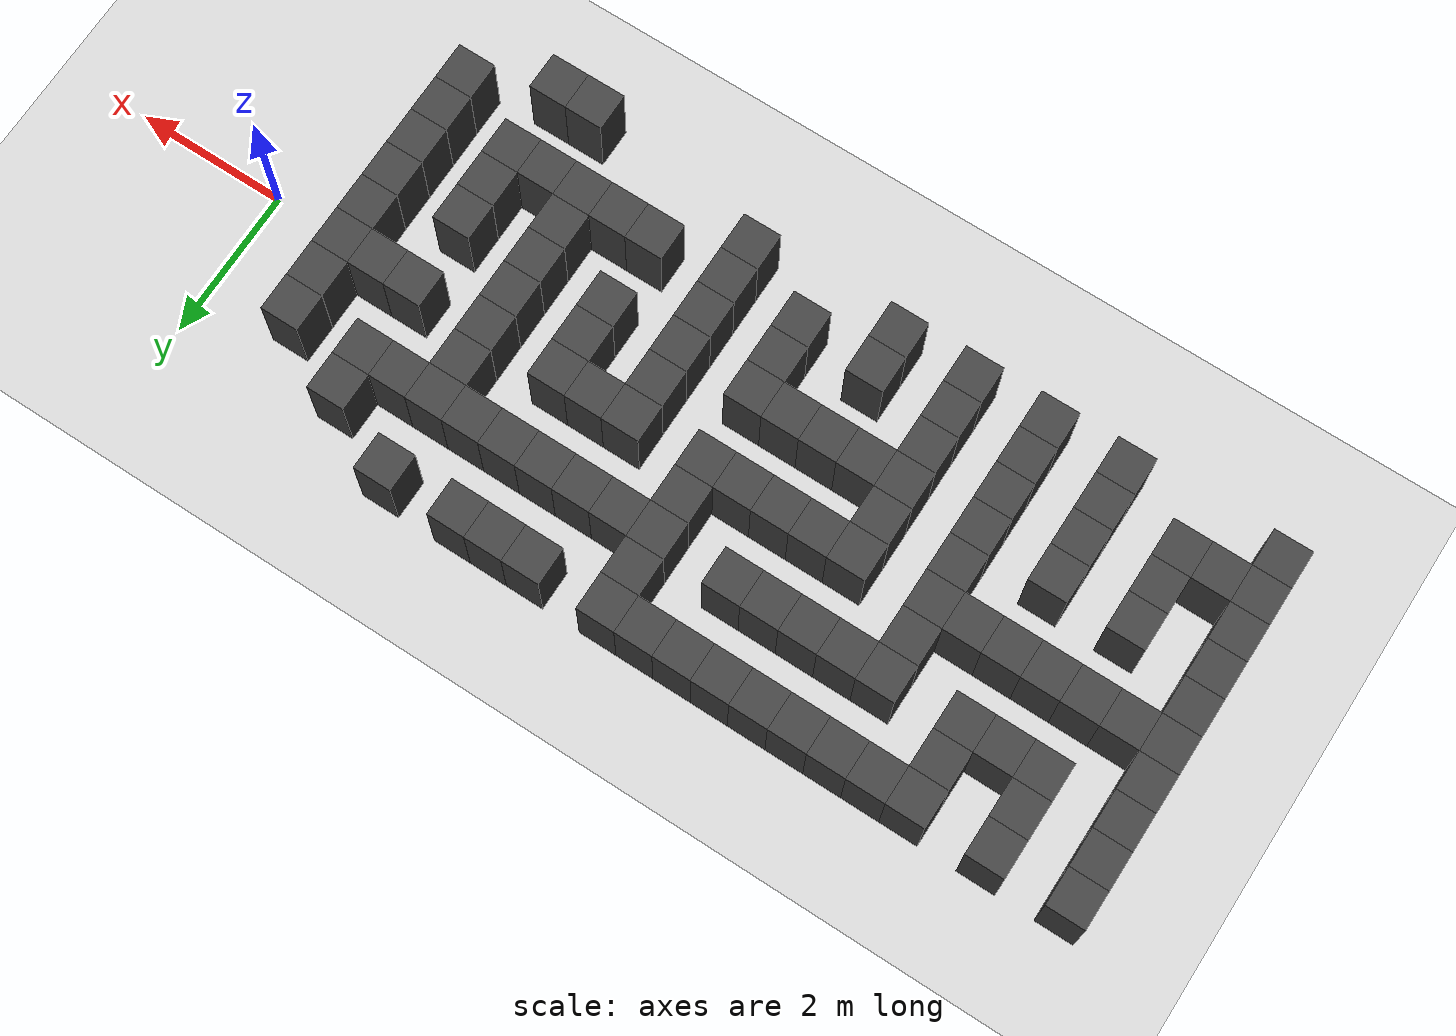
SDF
<sdf version="1.7">
 <world name="map_18596">
  <model name="ground_plane">
   <static>true</static>
   <link name="link">
    <collision name="collision">
     <geometry><plane><normal>0 0 1</normal><size>200 200</size></plane></geometry>
    </collision>
    <visual name="visual">
     <geometry><plane><normal>0 0 1</normal><size>200 200</size></plane></geometry>
     <material><ambient>0.8 0.8 0.8 1</ambient><diffuse>0.8 0.8 0.8 1</diffuse></material>
    </visual>
   </link>
  </model>
  <model name="maze_environment">
   <static>true</static>
   <link name="wall_507">
    <pose>-12.250 2.250 0.500 0 0 0</pose>
    <collision name="col"><geometry><box><size>0.5 0.5 1.0</size></box></geometry></collision>
    <visual name="vis">
     <geometry><box><size>0.5 0.5 1.0</size></box></geometry>
     <material><ambient>0.15 0.15 0.15 1</ambient><diffuse>0.25 0.25 0.25 1</diffuse></material>
    </visual>
   </link>
   <link name="wall_508">
    <pose>-11.250 2.250 0.500 0 0 0</pose>
    <collision name="col"><geometry><box><size>0.5 0.5 1.0</size></box></geometry></collision>
    <visual name="vis">
     <geometry><box><size>0.5 0.5 1.0</size></box></geometry>
     <material><ambient>0.15 0.15 0.15 1</ambient><diffuse>0.25 0.25 0.25 1</diffuse></material>
    </visual>
   </link>
   <link name="wall_509">
    <pose>-10.250 2.250 0.500 0 0 0</pose>
    <collision name="col"><geometry><box><size>0.5 0.5 1.0</size></box></geometry></collision>
    <visual name="vis">
     <geometry><box><size>0.5 0.5 1.0</size></box></geometry>
     <material><ambient>0.15 0.15 0.15 1</ambient><diffuse>0.25 0.25 0.25 1</diffuse></material>
    </visual>
   </link>
   <link name="wall_510">
    <pose>-9.750 2.250 0.500 0 0 0</pose>
    <collision name="col"><geometry><box><size>0.5 0.5 1.0</size></box></geometry></collision>
    <visual name="vis">
     <geometry><box><size>0.5 0.5 1.0</size></box></geometry>
     <material><ambient>0.15 0.15 0.15 1</ambient><diffuse>0.25 0.25 0.25 1</diffuse></material>
    </visual>
   </link>
   <link name="wall_511">
    <pose>-9.250 2.250 0.500 0 0 0</pose>
    <collision name="col"><geometry><box><size>0.5 0.5 1.0</size></box></geometry></collision>
    <visual name="vis">
     <geometry><box><size>0.5 0.5 1.0</size></box></geometry>
     <material><ambient>0.15 0.15 0.15 1</ambient><diffuse>0.25 0.25 0.25 1</diffuse></material>
    </visual>
   </link>
   <link name="wall_512">
    <pose>-8.750 2.250 0.500 0 0 0</pose>
    <collision name="col"><geometry><box><size>0.5 0.5 1.0</size></box></geometry></collision>
    <visual name="vis">
     <geometry><box><size>0.5 0.5 1.0</size></box></geometry>
     <material><ambient>0.15 0.15 0.15 1</ambient><diffuse>0.25 0.25 0.25 1</diffuse></material>
    </visual>
   </link>
   <link name="wall_513">
    <pose>-8.250 2.250 0.500 0 0 0</pose>
    <collision name="col"><geometry><box><size>0.5 0.5 1.0</size></box></geometry></collision>
    <visual name="vis">
     <geometry><box><size>0.5 0.5 1.0</size></box></geometry>
     <material><ambient>0.15 0.15 0.15 1</ambient><diffuse>0.25 0.25 0.25 1</diffuse></material>
    </visual>
   </link>
   <link name="wall_514">
    <pose>-7.750 2.250 0.500 0 0 0</pose>
    <collision name="col"><geometry><box><size>0.5 0.5 1.0</size></box></geometry></collision>
    <visual name="vis">
     <geometry><box><size>0.5 0.5 1.0</size></box></geometry>
     <material><ambient>0.15 0.15 0.15 1</ambient><diffuse>0.25 0.25 0.25 1</diffuse></material>
    </visual>
   </link>
   <link name="wall_515">
    <pose>-7.250 2.250 0.500 0 0 0</pose>
    <collision name="col"><geometry><box><size>0.5 0.5 1.0</size></box></geometry></collision>
    <visual name="vis">
     <geometry><box><size>0.5 0.5 1.0</size></box></geometry>
     <material><ambient>0.15 0.15 0.15 1</ambient><diffuse>0.25 0.25 0.25 1</diffuse></material>
    </visual>
   </link>
   <link name="wall_516">
    <pose>-6.750 2.250 0.500 0 0 0</pose>
    <collision name="col"><geometry><box><size>0.5 0.5 1.0</size></box></geometry></collision>
    <visual name="vis">
     <geometry><box><size>0.5 0.5 1.0</size></box></geometry>
     <material><ambient>0.15 0.15 0.15 1</ambient><diffuse>0.25 0.25 0.25 1</diffuse></material>
    </visual>
   </link>
   <link name="wall_517">
    <pose>-6.250 2.250 0.500 0 0 0</pose>
    <collision name="col"><geometry><box><size>0.5 0.5 1.0</size></box></geometry></collision>
    <visual name="vis">
     <geometry><box><size>0.5 0.5 1.0</size></box></geometry>
     <material><ambient>0.15 0.15 0.15 1</ambient><diffuse>0.25 0.25 0.25 1</diffuse></material>
    </visual>
   </link>
   <link name="wall_518">
    <pose>-5.250 2.250 0.500 0 0 0</pose>
    <collision name="col"><geometry><box><size>0.5 0.5 1.0</size></box></geometry></collision>
    <visual name="vis">
     <geometry><box><size>0.5 0.5 1.0</size></box></geometry>
     <material><ambient>0.15 0.15 0.15 1</ambient><diffuse>0.25 0.25 0.25 1</diffuse></material>
    </visual>
   </link>
   <link name="wall_519">
    <pose>-4.750 2.250 0.500 0 0 0</pose>
    <collision name="col"><geometry><box><size>0.5 0.5 1.0</size></box></geometry></collision>
    <visual name="vis">
     <geometry><box><size>0.5 0.5 1.0</size></box></geometry>
     <material><ambient>0.15 0.15 0.15 1</ambient><diffuse>0.25 0.25 0.25 1</diffuse></material>
    </visual>
   </link>
   <link name="wall_520">
    <pose>-4.250 2.250 0.500 0 0 0</pose>
    <collision name="col"><geometry><box><size>0.5 0.5 1.0</size></box></geometry></collision>
    <visual name="vis">
     <geometry><box><size>0.5 0.5 1.0</size></box></geometry>
     <material><ambient>0.15 0.15 0.15 1</ambient><diffuse>0.25 0.25 0.25 1</diffuse></material>
    </visual>
   </link>
   <link name="wall_521">
    <pose>-3.250 2.250 0.500 0 0 0</pose>
    <collision name="col"><geometry><box><size>0.5 0.5 1.0</size></box></geometry></collision>
    <visual name="vis">
     <geometry><box><size>0.5 0.5 1.0</size></box></geometry>
     <material><ambient>0.15 0.15 0.15 1</ambient><diffuse>0.25 0.25 0.25 1</diffuse></material>
    </visual>
   </link>
   <link name="wall_545">
    <pose>-12.250 1.750 0.500 0 0 0</pose>
    <collision name="col"><geometry><box><size>0.5 0.5 1.0</size></box></geometry></collision>
    <visual name="vis">
     <geometry><box><size>0.5 0.5 1.0</size></box></geometry>
     <material><ambient>0.15 0.15 0.15 1</ambient><diffuse>0.25 0.25 0.25 1</diffuse></material>
    </visual>
   </link>
   <link name="wall_546">
    <pose>-11.250 1.750 0.500 0 0 0</pose>
    <collision name="col"><geometry><box><size>0.5 0.5 1.0</size></box></geometry></collision>
    <visual name="vis">
     <geometry><box><size>0.5 0.5 1.0</size></box></geometry>
     <material><ambient>0.15 0.15 0.15 1</ambient><diffuse>0.25 0.25 0.25 1</diffuse></material>
    </visual>
   </link>
   <link name="wall_547">
    <pose>-10.250 1.750 0.500 0 0 0</pose>
    <collision name="col"><geometry><box><size>0.5 0.5 1.0</size></box></geometry></collision>
    <visual name="vis">
     <geometry><box><size>0.5 0.5 1.0</size></box></geometry>
     <material><ambient>0.15 0.15 0.15 1</ambient><diffuse>0.25 0.25 0.25 1</diffuse></material>
    </visual>
   </link>
   <link name="wall_548">
    <pose>-6.250 1.750 0.500 0 0 0</pose>
    <collision name="col"><geometry><box><size>0.5 0.5 1.0</size></box></geometry></collision>
    <visual name="vis">
     <geometry><box><size>0.5 0.5 1.0</size></box></geometry>
     <material><ambient>0.15 0.15 0.15 1</ambient><diffuse>0.25 0.25 0.25 1</diffuse></material>
    </visual>
   </link>
   <link name="wall_549">
    <pose>-2.250 1.750 0.500 0 0 0</pose>
    <collision name="col"><geometry><box><size>0.5 0.5 1.0</size></box></geometry></collision>
    <visual name="vis">
     <geometry><box><size>0.5 0.5 1.0</size></box></geometry>
     <material><ambient>0.15 0.15 0.15 1</ambient><diffuse>0.25 0.25 0.25 1</diffuse></material>
    </visual>
   </link>
   <link name="wall_558">
    <pose>-12.250 1.250 0.500 0 0 0</pose>
    <collision name="col"><geometry><box><size>0.5 0.5 1.0</size></box></geometry></collision>
    <visual name="vis">
     <geometry><box><size>0.5 0.5 1.0</size></box></geometry>
     <material><ambient>0.15 0.15 0.15 1</ambient><diffuse>0.25 0.25 0.25 1</diffuse></material>
    </visual>
   </link>
   <link name="wall_559">
    <pose>-11.250 1.250 0.500 0 0 0</pose>
    <collision name="col"><geometry><box><size>0.5 0.5 1.0</size></box></geometry></collision>
    <visual name="vis">
     <geometry><box><size>0.5 0.5 1.0</size></box></geometry>
     <material><ambient>0.15 0.15 0.15 1</ambient><diffuse>0.25 0.25 0.25 1</diffuse></material>
    </visual>
   </link>
   <link name="wall_560">
    <pose>-10.750 1.250 0.500 0 0 0</pose>
    <collision name="col"><geometry><box><size>0.5 0.5 1.0</size></box></geometry></collision>
    <visual name="vis">
     <geometry><box><size>0.5 0.5 1.0</size></box></geometry>
     <material><ambient>0.15 0.15 0.15 1</ambient><diffuse>0.25 0.25 0.25 1</diffuse></material>
    </visual>
   </link>
   <link name="wall_561">
    <pose>-10.250 1.250 0.500 0 0 0</pose>
    <collision name="col"><geometry><box><size>0.5 0.5 1.0</size></box></geometry></collision>
    <visual name="vis">
     <geometry><box><size>0.5 0.5 1.0</size></box></geometry>
     <material><ambient>0.15 0.15 0.15 1</ambient><diffuse>0.25 0.25 0.25 1</diffuse></material>
    </visual>
   </link>
   <link name="wall_562">
    <pose>-9.250 1.250 0.500 0 0 0</pose>
    <collision name="col"><geometry><box><size>0.5 0.5 1.0</size></box></geometry></collision>
    <visual name="vis">
     <geometry><box><size>0.5 0.5 1.0</size></box></geometry>
     <material><ambient>0.15 0.15 0.15 1</ambient><diffuse>0.25 0.25 0.25 1</diffuse></material>
    </visual>
   </link>
   <link name="wall_563">
    <pose>-8.750 1.250 0.500 0 0 0</pose>
    <collision name="col"><geometry><box><size>0.5 0.5 1.0</size></box></geometry></collision>
    <visual name="vis">
     <geometry><box><size>0.5 0.5 1.0</size></box></geometry>
     <material><ambient>0.15 0.15 0.15 1</ambient><diffuse>0.25 0.25 0.25 1</diffuse></material>
    </visual>
   </link>
   <link name="wall_564">
    <pose>-8.250 1.250 0.500 0 0 0</pose>
    <collision name="col"><geometry><box><size>0.5 0.5 1.0</size></box></geometry></collision>
    <visual name="vis">
     <geometry><box><size>0.5 0.5 1.0</size></box></geometry>
     <material><ambient>0.15 0.15 0.15 1</ambient><diffuse>0.25 0.25 0.25 1</diffuse></material>
    </visual>
   </link>
   <link name="wall_565">
    <pose>-7.750 1.250 0.500 0 0 0</pose>
    <collision name="col"><geometry><box><size>0.5 0.5 1.0</size></box></geometry></collision>
    <visual name="vis">
     <geometry><box><size>0.5 0.5 1.0</size></box></geometry>
     <material><ambient>0.15 0.15 0.15 1</ambient><diffuse>0.25 0.25 0.25 1</diffuse></material>
    </visual>
   </link>
   <link name="wall_566">
    <pose>-7.250 1.250 0.500 0 0 0</pose>
    <collision name="col"><geometry><box><size>0.5 0.5 1.0</size></box></geometry></collision>
    <visual name="vis">
     <geometry><box><size>0.5 0.5 1.0</size></box></geometry>
     <material><ambient>0.15 0.15 0.15 1</ambient><diffuse>0.25 0.25 0.25 1</diffuse></material>
    </visual>
   </link>
   <link name="wall_567">
    <pose>-6.250 1.250 0.500 0 0 0</pose>
    <collision name="col"><geometry><box><size>0.5 0.5 1.0</size></box></geometry></collision>
    <visual name="vis">
     <geometry><box><size>0.5 0.5 1.0</size></box></geometry>
     <material><ambient>0.15 0.15 0.15 1</ambient><diffuse>0.25 0.25 0.25 1</diffuse></material>
    </visual>
   </link>
   <link name="wall_568">
    <pose>-5.750 1.250 0.500 0 0 0</pose>
    <collision name="col"><geometry><box><size>0.5 0.5 1.0</size></box></geometry></collision>
    <visual name="vis">
     <geometry><box><size>0.5 0.5 1.0</size></box></geometry>
     <material><ambient>0.15 0.15 0.15 1</ambient><diffuse>0.25 0.25 0.25 1</diffuse></material>
    </visual>
   </link>
   <link name="wall_569">
    <pose>-5.250 1.250 0.500 0 0 0</pose>
    <collision name="col"><geometry><box><size>0.5 0.5 1.0</size></box></geometry></collision>
    <visual name="vis">
     <geometry><box><size>0.5 0.5 1.0</size></box></geometry>
     <material><ambient>0.15 0.15 0.15 1</ambient><diffuse>0.25 0.25 0.25 1</diffuse></material>
    </visual>
   </link>
   <link name="wall_570">
    <pose>-4.750 1.250 0.500 0 0 0</pose>
    <collision name="col"><geometry><box><size>0.5 0.5 1.0</size></box></geometry></collision>
    <visual name="vis">
     <geometry><box><size>0.5 0.5 1.0</size></box></geometry>
     <material><ambient>0.15 0.15 0.15 1</ambient><diffuse>0.25 0.25 0.25 1</diffuse></material>
    </visual>
   </link>
   <link name="wall_571">
    <pose>-4.250 1.250 0.500 0 0 0</pose>
    <collision name="col"><geometry><box><size>0.5 0.5 1.0</size></box></geometry></collision>
    <visual name="vis">
     <geometry><box><size>0.5 0.5 1.0</size></box></geometry>
     <material><ambient>0.15 0.15 0.15 1</ambient><diffuse>0.25 0.25 0.25 1</diffuse></material>
    </visual>
   </link>
   <link name="wall_572">
    <pose>-3.750 1.250 0.500 0 0 0</pose>
    <collision name="col"><geometry><box><size>0.5 0.5 1.0</size></box></geometry></collision>
    <visual name="vis">
     <geometry><box><size>0.5 0.5 1.0</size></box></geometry>
     <material><ambient>0.15 0.15 0.15 1</ambient><diffuse>0.25 0.25 0.25 1</diffuse></material>
    </visual>
   </link>
   <link name="wall_573">
    <pose>-3.250 1.250 0.500 0 0 0</pose>
    <collision name="col"><geometry><box><size>0.5 0.5 1.0</size></box></geometry></collision>
    <visual name="vis">
     <geometry><box><size>0.5 0.5 1.0</size></box></geometry>
     <material><ambient>0.15 0.15 0.15 1</ambient><diffuse>0.25 0.25 0.25 1</diffuse></material>
    </visual>
   </link>
   <link name="wall_574">
    <pose>-2.750 1.250 0.500 0 0 0</pose>
    <collision name="col"><geometry><box><size>0.5 0.5 1.0</size></box></geometry></collision>
    <visual name="vis">
     <geometry><box><size>0.5 0.5 1.0</size></box></geometry>
     <material><ambient>0.15 0.15 0.15 1</ambient><diffuse>0.25 0.25 0.25 1</diffuse></material>
    </visual>
   </link>
   <link name="wall_575">
    <pose>-2.250 1.250 0.500 0 0 0</pose>
    <collision name="col"><geometry><box><size>0.5 0.5 1.0</size></box></geometry></collision>
    <visual name="vis">
     <geometry><box><size>0.5 0.5 1.0</size></box></geometry>
     <material><ambient>0.15 0.15 0.15 1</ambient><diffuse>0.25 0.25 0.25 1</diffuse></material>
    </visual>
   </link>
   <link name="wall_576">
    <pose>-1.250 1.250 0.500 0 0 0</pose>
    <collision name="col"><geometry><box><size>0.5 0.5 1.0</size></box></geometry></collision>
    <visual name="vis">
     <geometry><box><size>0.5 0.5 1.0</size></box></geometry>
     <material><ambient>0.15 0.15 0.15 1</ambient><diffuse>0.25 0.25 0.25 1</diffuse></material>
    </visual>
   </link>
   <link name="wall_598">
    <pose>-12.250 0.750 0.500 0 0 0</pose>
    <collision name="col"><geometry><box><size>0.5 0.5 1.0</size></box></geometry></collision>
    <visual name="vis">
     <geometry><box><size>0.5 0.5 1.0</size></box></geometry>
     <material><ambient>0.15 0.15 0.15 1</ambient><diffuse>0.25 0.25 0.25 1</diffuse></material>
    </visual>
   </link>
   <link name="wall_599">
    <pose>-9.250 0.750 0.500 0 0 0</pose>
    <collision name="col"><geometry><box><size>0.5 0.5 1.0</size></box></geometry></collision>
    <visual name="vis">
     <geometry><box><size>0.5 0.5 1.0</size></box></geometry>
     <material><ambient>0.15 0.15 0.15 1</ambient><diffuse>0.25 0.25 0.25 1</diffuse></material>
    </visual>
   </link>
   <link name="wall_600">
    <pose>-6.250 0.750 0.500 0 0 0</pose>
    <collision name="col"><geometry><box><size>0.5 0.5 1.0</size></box></geometry></collision>
    <visual name="vis">
     <geometry><box><size>0.5 0.5 1.0</size></box></geometry>
     <material><ambient>0.15 0.15 0.15 1</ambient><diffuse>0.25 0.25 0.25 1</diffuse></material>
    </visual>
   </link>
   <link name="wall_601">
    <pose>-3.250 0.750 0.500 0 0 0</pose>
    <collision name="col"><geometry><box><size>0.5 0.5 1.0</size></box></geometry></collision>
    <visual name="vis">
     <geometry><box><size>0.5 0.5 1.0</size></box></geometry>
     <material><ambient>0.15 0.15 0.15 1</ambient><diffuse>0.25 0.25 0.25 1</diffuse></material>
    </visual>
   </link>
   <link name="wall_602">
    <pose>-1.250 0.750 0.500 0 0 0</pose>
    <collision name="col"><geometry><box><size>0.5 0.5 1.0</size></box></geometry></collision>
    <visual name="vis">
     <geometry><box><size>0.5 0.5 1.0</size></box></geometry>
     <material><ambient>0.15 0.15 0.15 1</ambient><diffuse>0.25 0.25 0.25 1</diffuse></material>
    </visual>
   </link>
   <link name="wall_610">
    <pose>-12.250 0.250 0.500 0 0 0</pose>
    <collision name="col"><geometry><box><size>0.5 0.5 1.0</size></box></geometry></collision>
    <visual name="vis">
     <geometry><box><size>0.5 0.5 1.0</size></box></geometry>
     <material><ambient>0.15 0.15 0.15 1</ambient><diffuse>0.25 0.25 0.25 1</diffuse></material>
    </visual>
   </link>
   <link name="wall_611">
    <pose>-11.750 0.250 0.500 0 0 0</pose>
    <collision name="col"><geometry><box><size>0.5 0.5 1.0</size></box></geometry></collision>
    <visual name="vis">
     <geometry><box><size>0.5 0.5 1.0</size></box></geometry>
     <material><ambient>0.15 0.15 0.15 1</ambient><diffuse>0.25 0.25 0.25 1</diffuse></material>
    </visual>
   </link>
   <link name="wall_612">
    <pose>-11.250 0.250 0.500 0 0 0</pose>
    <collision name="col"><geometry><box><size>0.5 0.5 1.0</size></box></geometry></collision>
    <visual name="vis">
     <geometry><box><size>0.5 0.5 1.0</size></box></geometry>
     <material><ambient>0.15 0.15 0.15 1</ambient><diffuse>0.25 0.25 0.25 1</diffuse></material>
    </visual>
   </link>
   <link name="wall_613">
    <pose>-10.750 0.250 0.500 0 0 0</pose>
    <collision name="col"><geometry><box><size>0.5 0.5 1.0</size></box></geometry></collision>
    <visual name="vis">
     <geometry><box><size>0.5 0.5 1.0</size></box></geometry>
     <material><ambient>0.15 0.15 0.15 1</ambient><diffuse>0.25 0.25 0.25 1</diffuse></material>
    </visual>
   </link>
   <link name="wall_614">
    <pose>-10.250 0.250 0.500 0 0 0</pose>
    <collision name="col"><geometry><box><size>0.5 0.5 1.0</size></box></geometry></collision>
    <visual name="vis">
     <geometry><box><size>0.5 0.5 1.0</size></box></geometry>
     <material><ambient>0.15 0.15 0.15 1</ambient><diffuse>0.25 0.25 0.25 1</diffuse></material>
    </visual>
   </link>
   <link name="wall_615">
    <pose>-9.750 0.250 0.500 0 0 0</pose>
    <collision name="col"><geometry><box><size>0.5 0.5 1.0</size></box></geometry></collision>
    <visual name="vis">
     <geometry><box><size>0.5 0.5 1.0</size></box></geometry>
     <material><ambient>0.15 0.15 0.15 1</ambient><diffuse>0.25 0.25 0.25 1</diffuse></material>
    </visual>
   </link>
   <link name="wall_616">
    <pose>-9.250 0.250 0.500 0 0 0</pose>
    <collision name="col"><geometry><box><size>0.5 0.5 1.0</size></box></geometry></collision>
    <visual name="vis">
     <geometry><box><size>0.5 0.5 1.0</size></box></geometry>
     <material><ambient>0.15 0.15 0.15 1</ambient><diffuse>0.25 0.25 0.25 1</diffuse></material>
    </visual>
   </link>
   <link name="wall_617">
    <pose>-8.250 0.250 0.500 0 0 0</pose>
    <collision name="col"><geometry><box><size>0.5 0.5 1.0</size></box></geometry></collision>
    <visual name="vis">
     <geometry><box><size>0.5 0.5 1.0</size></box></geometry>
     <material><ambient>0.15 0.15 0.15 1</ambient><diffuse>0.25 0.25 0.25 1</diffuse></material>
    </visual>
   </link>
   <link name="wall_618">
    <pose>-7.750 0.250 0.500 0 0 0</pose>
    <collision name="col"><geometry><box><size>0.5 0.5 1.0</size></box></geometry></collision>
    <visual name="vis">
     <geometry><box><size>0.5 0.5 1.0</size></box></geometry>
     <material><ambient>0.15 0.15 0.15 1</ambient><diffuse>0.25 0.25 0.25 1</diffuse></material>
    </visual>
   </link>
   <link name="wall_619">
    <pose>-7.250 0.250 0.500 0 0 0</pose>
    <collision name="col"><geometry><box><size>0.5 0.5 1.0</size></box></geometry></collision>
    <visual name="vis">
     <geometry><box><size>0.5 0.5 1.0</size></box></geometry>
     <material><ambient>0.15 0.15 0.15 1</ambient><diffuse>0.25 0.25 0.25 1</diffuse></material>
    </visual>
   </link>
   <link name="wall_620">
    <pose>-6.750 0.250 0.500 0 0 0</pose>
    <collision name="col"><geometry><box><size>0.5 0.5 1.0</size></box></geometry></collision>
    <visual name="vis">
     <geometry><box><size>0.5 0.5 1.0</size></box></geometry>
     <material><ambient>0.15 0.15 0.15 1</ambient><diffuse>0.25 0.25 0.25 1</diffuse></material>
    </visual>
   </link>
   <link name="wall_621">
    <pose>-6.250 0.250 0.500 0 0 0</pose>
    <collision name="col"><geometry><box><size>0.5 0.5 1.0</size></box></geometry></collision>
    <visual name="vis">
     <geometry><box><size>0.5 0.5 1.0</size></box></geometry>
     <material><ambient>0.15 0.15 0.15 1</ambient><diffuse>0.25 0.25 0.25 1</diffuse></material>
    </visual>
   </link>
   <link name="wall_622">
    <pose>-5.250 0.250 0.500 0 0 0</pose>
    <collision name="col"><geometry><box><size>0.5 0.5 1.0</size></box></geometry></collision>
    <visual name="vis">
     <geometry><box><size>0.5 0.5 1.0</size></box></geometry>
     <material><ambient>0.15 0.15 0.15 1</ambient><diffuse>0.25 0.25 0.25 1</diffuse></material>
    </visual>
   </link>
   <link name="wall_623">
    <pose>-4.750 0.250 0.500 0 0 0</pose>
    <collision name="col"><geometry><box><size>0.5 0.5 1.0</size></box></geometry></collision>
    <visual name="vis">
     <geometry><box><size>0.5 0.5 1.0</size></box></geometry>
     <material><ambient>0.15 0.15 0.15 1</ambient><diffuse>0.25 0.25 0.25 1</diffuse></material>
    </visual>
   </link>
   <link name="wall_624">
    <pose>-4.250 0.250 0.500 0 0 0</pose>
    <collision name="col"><geometry><box><size>0.5 0.5 1.0</size></box></geometry></collision>
    <visual name="vis">
     <geometry><box><size>0.5 0.5 1.0</size></box></geometry>
     <material><ambient>0.15 0.15 0.15 1</ambient><diffuse>0.25 0.25 0.25 1</diffuse></material>
    </visual>
   </link>
   <link name="wall_625">
    <pose>-3.250 0.250 0.500 0 0 0</pose>
    <collision name="col"><geometry><box><size>0.5 0.5 1.0</size></box></geometry></collision>
    <visual name="vis">
     <geometry><box><size>0.5 0.5 1.0</size></box></geometry>
     <material><ambient>0.15 0.15 0.15 1</ambient><diffuse>0.25 0.25 0.25 1</diffuse></material>
    </visual>
   </link>
   <link name="wall_626">
    <pose>-2.250 0.250 0.500 0 0 0</pose>
    <collision name="col"><geometry><box><size>0.5 0.5 1.0</size></box></geometry></collision>
    <visual name="vis">
     <geometry><box><size>0.5 0.5 1.0</size></box></geometry>
     <material><ambient>0.15 0.15 0.15 1</ambient><diffuse>0.25 0.25 0.25 1</diffuse></material>
    </visual>
   </link>
   <link name="wall_627">
    <pose>-1.750 0.250 0.500 0 0 0</pose>
    <collision name="col"><geometry><box><size>0.5 0.5 1.0</size></box></geometry></collision>
    <visual name="vis">
     <geometry><box><size>0.5 0.5 1.0</size></box></geometry>
     <material><ambient>0.15 0.15 0.15 1</ambient><diffuse>0.25 0.25 0.25 1</diffuse></material>
    </visual>
   </link>
   <link name="wall_628">
    <pose>-1.250 0.250 0.500 0 0 0</pose>
    <collision name="col"><geometry><box><size>0.5 0.5 1.0</size></box></geometry></collision>
    <visual name="vis">
     <geometry><box><size>0.5 0.5 1.0</size></box></geometry>
     <material><ambient>0.15 0.15 0.15 1</ambient><diffuse>0.25 0.25 0.25 1</diffuse></material>
    </visual>
   </link>
   <link name="wall_649">
    <pose>-12.250 -0.250 0.500 0 0 0</pose>
    <collision name="col"><geometry><box><size>0.5 0.5 1.0</size></box></geometry></collision>
    <visual name="vis">
     <geometry><box><size>0.5 0.5 1.0</size></box></geometry>
     <material><ambient>0.15 0.15 0.15 1</ambient><diffuse>0.25 0.25 0.25 1</diffuse></material>
    </visual>
   </link>
   <link name="wall_650">
    <pose>-9.250 -0.250 0.500 0 0 0</pose>
    <collision name="col"><geometry><box><size>0.5 0.5 1.0</size></box></geometry></collision>
    <visual name="vis">
     <geometry><box><size>0.5 0.5 1.0</size></box></geometry>
     <material><ambient>0.15 0.15 0.15 1</ambient><diffuse>0.25 0.25 0.25 1</diffuse></material>
    </visual>
   </link>
   <link name="wall_651">
    <pose>-8.250 -0.250 0.500 0 0 0</pose>
    <collision name="col"><geometry><box><size>0.5 0.5 1.0</size></box></geometry></collision>
    <visual name="vis">
     <geometry><box><size>0.5 0.5 1.0</size></box></geometry>
     <material><ambient>0.15 0.15 0.15 1</ambient><diffuse>0.25 0.25 0.25 1</diffuse></material>
    </visual>
   </link>
   <link name="wall_652">
    <pose>-5.250 -0.250 0.500 0 0 0</pose>
    <collision name="col"><geometry><box><size>0.5 0.5 1.0</size></box></geometry></collision>
    <visual name="vis">
     <geometry><box><size>0.5 0.5 1.0</size></box></geometry>
     <material><ambient>0.15 0.15 0.15 1</ambient><diffuse>0.25 0.25 0.25 1</diffuse></material>
    </visual>
   </link>
   <link name="wall_653">
    <pose>-4.250 -0.250 0.500 0 0 0</pose>
    <collision name="col"><geometry><box><size>0.5 0.5 1.0</size></box></geometry></collision>
    <visual name="vis">
     <geometry><box><size>0.5 0.5 1.0</size></box></geometry>
     <material><ambient>0.15 0.15 0.15 1</ambient><diffuse>0.25 0.25 0.25 1</diffuse></material>
    </visual>
   </link>
   <link name="wall_654">
    <pose>-3.250 -0.250 0.500 0 0 0</pose>
    <collision name="col"><geometry><box><size>0.5 0.5 1.0</size></box></geometry></collision>
    <visual name="vis">
     <geometry><box><size>0.5 0.5 1.0</size></box></geometry>
     <material><ambient>0.15 0.15 0.15 1</ambient><diffuse>0.25 0.25 0.25 1</diffuse></material>
    </visual>
   </link>
   <link name="wall_655">
    <pose>-1.250 -0.250 0.500 0 0 0</pose>
    <collision name="col"><geometry><box><size>0.5 0.5 1.0</size></box></geometry></collision>
    <visual name="vis">
     <geometry><box><size>0.5 0.5 1.0</size></box></geometry>
     <material><ambient>0.15 0.15 0.15 1</ambient><diffuse>0.25 0.25 0.25 1</diffuse></material>
    </visual>
   </link>
   <link name="wall_663">
    <pose>-12.250 -0.750 0.500 0 0 0</pose>
    <collision name="col"><geometry><box><size>0.5 0.5 1.0</size></box></geometry></collision>
    <visual name="vis">
     <geometry><box><size>0.5 0.5 1.0</size></box></geometry>
     <material><ambient>0.15 0.15 0.15 1</ambient><diffuse>0.25 0.25 0.25 1</diffuse></material>
    </visual>
   </link>
   <link name="wall_664">
    <pose>-11.250 -0.750 0.500 0 0 0</pose>
    <collision name="col"><geometry><box><size>0.5 0.5 1.0</size></box></geometry></collision>
    <visual name="vis">
     <geometry><box><size>0.5 0.5 1.0</size></box></geometry>
     <material><ambient>0.15 0.15 0.15 1</ambient><diffuse>0.25 0.25 0.25 1</diffuse></material>
    </visual>
   </link>
   <link name="wall_665">
    <pose>-10.250 -0.750 0.500 0 0 0</pose>
    <collision name="col"><geometry><box><size>0.5 0.5 1.0</size></box></geometry></collision>
    <visual name="vis">
     <geometry><box><size>0.5 0.5 1.0</size></box></geometry>
     <material><ambient>0.15 0.15 0.15 1</ambient><diffuse>0.25 0.25 0.25 1</diffuse></material>
    </visual>
   </link>
   <link name="wall_666">
    <pose>-9.250 -0.750 0.500 0 0 0</pose>
    <collision name="col"><geometry><box><size>0.5 0.5 1.0</size></box></geometry></collision>
    <visual name="vis">
     <geometry><box><size>0.5 0.5 1.0</size></box></geometry>
     <material><ambient>0.15 0.15 0.15 1</ambient><diffuse>0.25 0.25 0.25 1</diffuse></material>
    </visual>
   </link>
   <link name="wall_667">
    <pose>-8.250 -0.750 0.500 0 0 0</pose>
    <collision name="col"><geometry><box><size>0.5 0.5 1.0</size></box></geometry></collision>
    <visual name="vis">
     <geometry><box><size>0.5 0.5 1.0</size></box></geometry>
     <material><ambient>0.15 0.15 0.15 1</ambient><diffuse>0.25 0.25 0.25 1</diffuse></material>
    </visual>
   </link>
   <link name="wall_668">
    <pose>-7.750 -0.750 0.500 0 0 0</pose>
    <collision name="col"><geometry><box><size>0.5 0.5 1.0</size></box></geometry></collision>
    <visual name="vis">
     <geometry><box><size>0.5 0.5 1.0</size></box></geometry>
     <material><ambient>0.15 0.15 0.15 1</ambient><diffuse>0.25 0.25 0.25 1</diffuse></material>
    </visual>
   </link>
   <link name="wall_669">
    <pose>-7.250 -0.750 0.500 0 0 0</pose>
    <collision name="col"><geometry><box><size>0.5 0.5 1.0</size></box></geometry></collision>
    <visual name="vis">
     <geometry><box><size>0.5 0.5 1.0</size></box></geometry>
     <material><ambient>0.15 0.15 0.15 1</ambient><diffuse>0.25 0.25 0.25 1</diffuse></material>
    </visual>
   </link>
   <link name="wall_670">
    <pose>-6.750 -0.750 0.500 0 0 0</pose>
    <collision name="col"><geometry><box><size>0.5 0.5 1.0</size></box></geometry></collision>
    <visual name="vis">
     <geometry><box><size>0.5 0.5 1.0</size></box></geometry>
     <material><ambient>0.15 0.15 0.15 1</ambient><diffuse>0.25 0.25 0.25 1</diffuse></material>
    </visual>
   </link>
   <link name="wall_671">
    <pose>-6.250 -0.750 0.500 0 0 0</pose>
    <collision name="col"><geometry><box><size>0.5 0.5 1.0</size></box></geometry></collision>
    <visual name="vis">
     <geometry><box><size>0.5 0.5 1.0</size></box></geometry>
     <material><ambient>0.15 0.15 0.15 1</ambient><diffuse>0.25 0.25 0.25 1</diffuse></material>
    </visual>
   </link>
   <link name="wall_672">
    <pose>-5.250 -0.750 0.500 0 0 0</pose>
    <collision name="col"><geometry><box><size>0.5 0.5 1.0</size></box></geometry></collision>
    <visual name="vis">
     <geometry><box><size>0.5 0.5 1.0</size></box></geometry>
     <material><ambient>0.15 0.15 0.15 1</ambient><diffuse>0.25 0.25 0.25 1</diffuse></material>
    </visual>
   </link>
   <link name="wall_673">
    <pose>-4.250 -0.750 0.500 0 0 0</pose>
    <collision name="col"><geometry><box><size>0.5 0.5 1.0</size></box></geometry></collision>
    <visual name="vis">
     <geometry><box><size>0.5 0.5 1.0</size></box></geometry>
     <material><ambient>0.15 0.15 0.15 1</ambient><diffuse>0.25 0.25 0.25 1</diffuse></material>
    </visual>
   </link>
   <link name="wall_674">
    <pose>-3.250 -0.750 0.500 0 0 0</pose>
    <collision name="col"><geometry><box><size>0.5 0.5 1.0</size></box></geometry></collision>
    <visual name="vis">
     <geometry><box><size>0.5 0.5 1.0</size></box></geometry>
     <material><ambient>0.15 0.15 0.15 1</ambient><diffuse>0.25 0.25 0.25 1</diffuse></material>
    </visual>
   </link>
   <link name="wall_675">
    <pose>-2.250 -0.750 0.500 0 0 0</pose>
    <collision name="col"><geometry><box><size>0.5 0.5 1.0</size></box></geometry></collision>
    <visual name="vis">
     <geometry><box><size>0.5 0.5 1.0</size></box></geometry>
     <material><ambient>0.15 0.15 0.15 1</ambient><diffuse>0.25 0.25 0.25 1</diffuse></material>
    </visual>
   </link>
   <link name="wall_676">
    <pose>-1.250 -0.750 0.500 0 0 0</pose>
    <collision name="col"><geometry><box><size>0.5 0.5 1.0</size></box></geometry></collision>
    <visual name="vis">
     <geometry><box><size>0.5 0.5 1.0</size></box></geometry>
     <material><ambient>0.15 0.15 0.15 1</ambient><diffuse>0.25 0.25 0.25 1</diffuse></material>
    </visual>
   </link>
   <link name="wall_696">
    <pose>-12.250 -1.250 0.500 0 0 0</pose>
    <collision name="col"><geometry><box><size>0.5 0.5 1.0</size></box></geometry></collision>
    <visual name="vis">
     <geometry><box><size>0.5 0.5 1.0</size></box></geometry>
     <material><ambient>0.15 0.15 0.15 1</ambient><diffuse>0.25 0.25 0.25 1</diffuse></material>
    </visual>
   </link>
   <link name="wall_697">
    <pose>-11.250 -1.250 0.500 0 0 0</pose>
    <collision name="col"><geometry><box><size>0.5 0.5 1.0</size></box></geometry></collision>
    <visual name="vis">
     <geometry><box><size>0.5 0.5 1.0</size></box></geometry>
     <material><ambient>0.15 0.15 0.15 1</ambient><diffuse>0.25 0.25 0.25 1</diffuse></material>
    </visual>
   </link>
   <link name="wall_698">
    <pose>-10.250 -1.250 0.500 0 0 0</pose>
    <collision name="col"><geometry><box><size>0.5 0.5 1.0</size></box></geometry></collision>
    <visual name="vis">
     <geometry><box><size>0.5 0.5 1.0</size></box></geometry>
     <material><ambient>0.15 0.15 0.15 1</ambient><diffuse>0.25 0.25 0.25 1</diffuse></material>
    </visual>
   </link>
   <link name="wall_699">
    <pose>-9.250 -1.250 0.500 0 0 0</pose>
    <collision name="col"><geometry><box><size>0.5 0.5 1.0</size></box></geometry></collision>
    <visual name="vis">
     <geometry><box><size>0.5 0.5 1.0</size></box></geometry>
     <material><ambient>0.15 0.15 0.15 1</ambient><diffuse>0.25 0.25 0.25 1</diffuse></material>
    </visual>
   </link>
   <link name="wall_700">
    <pose>-8.250 -1.250 0.500 0 0 0</pose>
    <collision name="col"><geometry><box><size>0.5 0.5 1.0</size></box></geometry></collision>
    <visual name="vis">
     <geometry><box><size>0.5 0.5 1.0</size></box></geometry>
     <material><ambient>0.15 0.15 0.15 1</ambient><diffuse>0.25 0.25 0.25 1</diffuse></material>
    </visual>
   </link>
   <link name="wall_701">
    <pose>-6.250 -1.250 0.500 0 0 0</pose>
    <collision name="col"><geometry><box><size>0.5 0.5 1.0</size></box></geometry></collision>
    <visual name="vis">
     <geometry><box><size>0.5 0.5 1.0</size></box></geometry>
     <material><ambient>0.15 0.15 0.15 1</ambient><diffuse>0.25 0.25 0.25 1</diffuse></material>
    </visual>
   </link>
   <link name="wall_702">
    <pose>-5.250 -1.250 0.500 0 0 0</pose>
    <collision name="col"><geometry><box><size>0.5 0.5 1.0</size></box></geometry></collision>
    <visual name="vis">
     <geometry><box><size>0.5 0.5 1.0</size></box></geometry>
     <material><ambient>0.15 0.15 0.15 1</ambient><diffuse>0.25 0.25 0.25 1</diffuse></material>
    </visual>
   </link>
   <link name="wall_703">
    <pose>-3.250 -1.250 0.500 0 0 0</pose>
    <collision name="col"><geometry><box><size>0.5 0.5 1.0</size></box></geometry></collision>
    <visual name="vis">
     <geometry><box><size>0.5 0.5 1.0</size></box></geometry>
     <material><ambient>0.15 0.15 0.15 1</ambient><diffuse>0.25 0.25 0.25 1</diffuse></material>
    </visual>
   </link>
   <link name="wall_704">
    <pose>-2.250 -1.250 0.500 0 0 0</pose>
    <collision name="col"><geometry><box><size>0.5 0.5 1.0</size></box></geometry></collision>
    <visual name="vis">
     <geometry><box><size>0.5 0.5 1.0</size></box></geometry>
     <material><ambient>0.15 0.15 0.15 1</ambient><diffuse>0.25 0.25 0.25 1</diffuse></material>
    </visual>
   </link>
   <link name="wall_705">
    <pose>-1.250 -1.250 0.500 0 0 0</pose>
    <collision name="col"><geometry><box><size>0.5 0.5 1.0</size></box></geometry></collision>
    <visual name="vis">
     <geometry><box><size>0.5 0.5 1.0</size></box></geometry>
     <material><ambient>0.15 0.15 0.15 1</ambient><diffuse>0.25 0.25 0.25 1</diffuse></material>
    </visual>
   </link>
   <link name="wall_715">
    <pose>-12.250 -1.750 0.500 0 0 0</pose>
    <collision name="col"><geometry><box><size>0.5 0.5 1.0</size></box></geometry></collision>
    <visual name="vis">
     <geometry><box><size>0.5 0.5 1.0</size></box></geometry>
     <material><ambient>0.15 0.15 0.15 1</ambient><diffuse>0.25 0.25 0.25 1</diffuse></material>
    </visual>
   </link>
   <link name="wall_716">
    <pose>-11.750 -1.750 0.500 0 0 0</pose>
    <collision name="col"><geometry><box><size>0.5 0.5 1.0</size></box></geometry></collision>
    <visual name="vis">
     <geometry><box><size>0.5 0.5 1.0</size></box></geometry>
     <material><ambient>0.15 0.15 0.15 1</ambient><diffuse>0.25 0.25 0.25 1</diffuse></material>
    </visual>
   </link>
   <link name="wall_717">
    <pose>-11.250 -1.750 0.500 0 0 0</pose>
    <collision name="col"><geometry><box><size>0.5 0.5 1.0</size></box></geometry></collision>
    <visual name="vis">
     <geometry><box><size>0.5 0.5 1.0</size></box></geometry>
     <material><ambient>0.15 0.15 0.15 1</ambient><diffuse>0.25 0.25 0.25 1</diffuse></material>
    </visual>
   </link>
   <link name="wall_718">
    <pose>-10.250 -1.750 0.500 0 0 0</pose>
    <collision name="col"><geometry><box><size>0.5 0.5 1.0</size></box></geometry></collision>
    <visual name="vis">
     <geometry><box><size>0.5 0.5 1.0</size></box></geometry>
     <material><ambient>0.15 0.15 0.15 1</ambient><diffuse>0.25 0.25 0.25 1</diffuse></material>
    </visual>
   </link>
   <link name="wall_719">
    <pose>-9.250 -1.750 0.500 0 0 0</pose>
    <collision name="col"><geometry><box><size>0.5 0.5 1.0</size></box></geometry></collision>
    <visual name="vis">
     <geometry><box><size>0.5 0.5 1.0</size></box></geometry>
     <material><ambient>0.15 0.15 0.15 1</ambient><diffuse>0.25 0.25 0.25 1</diffuse></material>
    </visual>
   </link>
   <link name="wall_720">
    <pose>-8.250 -1.750 0.500 0 0 0</pose>
    <collision name="col"><geometry><box><size>0.5 0.5 1.0</size></box></geometry></collision>
    <visual name="vis">
     <geometry><box><size>0.5 0.5 1.0</size></box></geometry>
     <material><ambient>0.15 0.15 0.15 1</ambient><diffuse>0.25 0.25 0.25 1</diffuse></material>
    </visual>
   </link>
   <link name="wall_721">
    <pose>-7.250 -1.750 0.500 0 0 0</pose>
    <collision name="col"><geometry><box><size>0.5 0.5 1.0</size></box></geometry></collision>
    <visual name="vis">
     <geometry><box><size>0.5 0.5 1.0</size></box></geometry>
     <material><ambient>0.15 0.15 0.15 1</ambient><diffuse>0.25 0.25 0.25 1</diffuse></material>
    </visual>
   </link>
   <link name="wall_722">
    <pose>-6.250 -1.750 0.500 0 0 0</pose>
    <collision name="col"><geometry><box><size>0.5 0.5 1.0</size></box></geometry></collision>
    <visual name="vis">
     <geometry><box><size>0.5 0.5 1.0</size></box></geometry>
     <material><ambient>0.15 0.15 0.15 1</ambient><diffuse>0.25 0.25 0.25 1</diffuse></material>
    </visual>
   </link>
   <link name="wall_723">
    <pose>-5.250 -1.750 0.500 0 0 0</pose>
    <collision name="col"><geometry><box><size>0.5 0.5 1.0</size></box></geometry></collision>
    <visual name="vis">
     <geometry><box><size>0.5 0.5 1.0</size></box></geometry>
     <material><ambient>0.15 0.15 0.15 1</ambient><diffuse>0.25 0.25 0.25 1</diffuse></material>
    </visual>
   </link>
   <link name="wall_724">
    <pose>-4.250 -1.750 0.500 0 0 0</pose>
    <collision name="col"><geometry><box><size>0.5 0.5 1.0</size></box></geometry></collision>
    <visual name="vis">
     <geometry><box><size>0.5 0.5 1.0</size></box></geometry>
     <material><ambient>0.15 0.15 0.15 1</ambient><diffuse>0.25 0.25 0.25 1</diffuse></material>
    </visual>
   </link>
   <link name="wall_725">
    <pose>-3.750 -1.750 0.500 0 0 0</pose>
    <collision name="col"><geometry><box><size>0.5 0.5 1.0</size></box></geometry></collision>
    <visual name="vis">
     <geometry><box><size>0.5 0.5 1.0</size></box></geometry>
     <material><ambient>0.15 0.15 0.15 1</ambient><diffuse>0.25 0.25 0.25 1</diffuse></material>
    </visual>
   </link>
   <link name="wall_726">
    <pose>-3.250 -1.750 0.500 0 0 0</pose>
    <collision name="col"><geometry><box><size>0.5 0.5 1.0</size></box></geometry></collision>
    <visual name="vis">
     <geometry><box><size>0.5 0.5 1.0</size></box></geometry>
     <material><ambient>0.15 0.15 0.15 1</ambient><diffuse>0.25 0.25 0.25 1</diffuse></material>
    </visual>
   </link>
   <link name="wall_727">
    <pose>-2.750 -1.750 0.500 0 0 0</pose>
    <collision name="col"><geometry><box><size>0.5 0.5 1.0</size></box></geometry></collision>
    <visual name="vis">
     <geometry><box><size>0.5 0.5 1.0</size></box></geometry>
     <material><ambient>0.15 0.15 0.15 1</ambient><diffuse>0.25 0.25 0.25 1</diffuse></material>
    </visual>
   </link>
   <link name="wall_728">
    <pose>-2.250 -1.750 0.500 0 0 0</pose>
    <collision name="col"><geometry><box><size>0.5 0.5 1.0</size></box></geometry></collision>
    <visual name="vis">
     <geometry><box><size>0.5 0.5 1.0</size></box></geometry>
     <material><ambient>0.15 0.15 0.15 1</ambient><diffuse>0.25 0.25 0.25 1</diffuse></material>
    </visual>
   </link>
   <link name="wall_729">
    <pose>-1.250 -1.750 0.500 0 0 0</pose>
    <collision name="col"><geometry><box><size>0.5 0.5 1.0</size></box></geometry></collision>
    <visual name="vis">
     <geometry><box><size>0.5 0.5 1.0</size></box></geometry>
     <material><ambient>0.15 0.15 0.15 1</ambient><diffuse>0.25 0.25 0.25 1</diffuse></material>
    </visual>
   </link>
   <link name="wall_746">
    <pose>-12.250 -2.250 0.500 0 0 0</pose>
    <collision name="col"><geometry><box><size>0.5 0.5 1.0</size></box></geometry></collision>
    <visual name="vis">
     <geometry><box><size>0.5 0.5 1.0</size></box></geometry>
     <material><ambient>0.15 0.15 0.15 1</ambient><diffuse>0.25 0.25 0.25 1</diffuse></material>
    </visual>
   </link>
   <link name="wall_747">
    <pose>-10.250 -2.250 0.500 0 0 0</pose>
    <collision name="col"><geometry><box><size>0.5 0.5 1.0</size></box></geometry></collision>
    <visual name="vis">
     <geometry><box><size>0.5 0.5 1.0</size></box></geometry>
     <material><ambient>0.15 0.15 0.15 1</ambient><diffuse>0.25 0.25 0.25 1</diffuse></material>
    </visual>
   </link>
   <link name="wall_748">
    <pose>-9.250 -2.250 0.500 0 0 0</pose>
    <collision name="col"><geometry><box><size>0.5 0.5 1.0</size></box></geometry></collision>
    <visual name="vis">
     <geometry><box><size>0.5 0.5 1.0</size></box></geometry>
     <material><ambient>0.15 0.15 0.15 1</ambient><diffuse>0.25 0.25 0.25 1</diffuse></material>
    </visual>
   </link>
   <link name="wall_749">
    <pose>-8.250 -2.250 0.500 0 0 0</pose>
    <collision name="col"><geometry><box><size>0.5 0.5 1.0</size></box></geometry></collision>
    <visual name="vis">
     <geometry><box><size>0.5 0.5 1.0</size></box></geometry>
     <material><ambient>0.15 0.15 0.15 1</ambient><diffuse>0.25 0.25 0.25 1</diffuse></material>
    </visual>
   </link>
   <link name="wall_750">
    <pose>-7.250 -2.250 0.500 0 0 0</pose>
    <collision name="col"><geometry><box><size>0.5 0.5 1.0</size></box></geometry></collision>
    <visual name="vis">
     <geometry><box><size>0.5 0.5 1.0</size></box></geometry>
     <material><ambient>0.15 0.15 0.15 1</ambient><diffuse>0.25 0.25 0.25 1</diffuse></material>
    </visual>
   </link>
   <link name="wall_751">
    <pose>-5.250 -2.250 0.500 0 0 0</pose>
    <collision name="col"><geometry><box><size>0.5 0.5 1.0</size></box></geometry></collision>
    <visual name="vis">
     <geometry><box><size>0.5 0.5 1.0</size></box></geometry>
     <material><ambient>0.15 0.15 0.15 1</ambient><diffuse>0.25 0.25 0.25 1</diffuse></material>
    </visual>
   </link>
   <link name="wall_752">
    <pose>-1.250 -2.250 0.500 0 0 0</pose>
    <collision name="col"><geometry><box><size>0.5 0.5 1.0</size></box></geometry></collision>
    <visual name="vis">
     <geometry><box><size>0.5 0.5 1.0</size></box></geometry>
     <material><ambient>0.15 0.15 0.15 1</ambient><diffuse>0.25 0.25 0.25 1</diffuse></material>
    </visual>
   </link>
   <link name="wall_775">
    <pose>-2.750 -2.750 0.500 0 0 0</pose>
    <collision name="col"><geometry><box><size>0.5 0.5 1.0</size></box></geometry></collision>
    <visual name="vis">
     <geometry><box><size>0.5 0.5 1.0</size></box></geometry>
     <material><ambient>0.15 0.15 0.15 1</ambient><diffuse>0.25 0.25 0.25 1</diffuse></material>
    </visual>
   </link>
   <link name="wall_776">
    <pose>-2.250 -2.750 0.500 0 0 0</pose>
    <collision name="col"><geometry><box><size>0.5 0.5 1.0</size></box></geometry></collision>
    <visual name="vis">
     <geometry><box><size>0.5 0.5 1.0</size></box></geometry>
     <material><ambient>0.15 0.15 0.15 1</ambient><diffuse>0.25 0.25 0.25 1</diffuse></material>
    </visual>
   </link>
  </model>
 </world>
</sdf>
